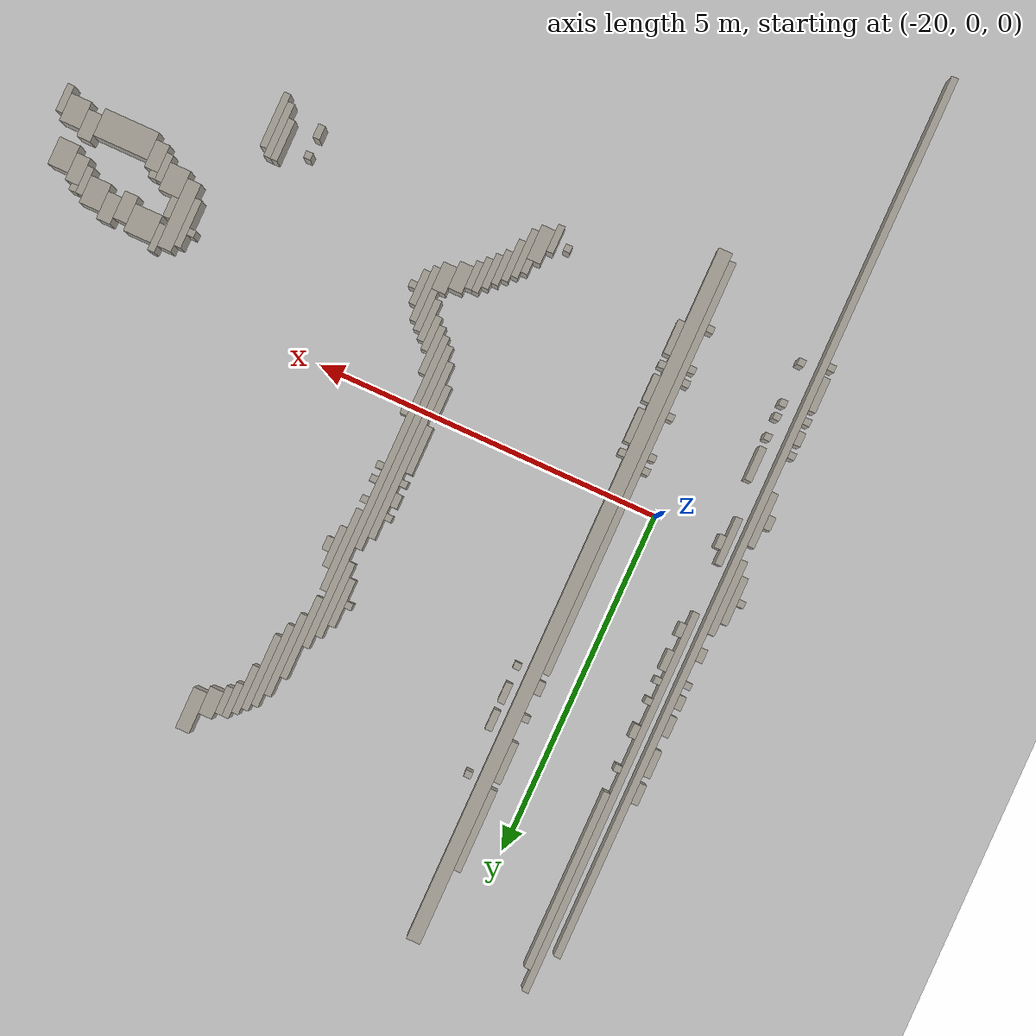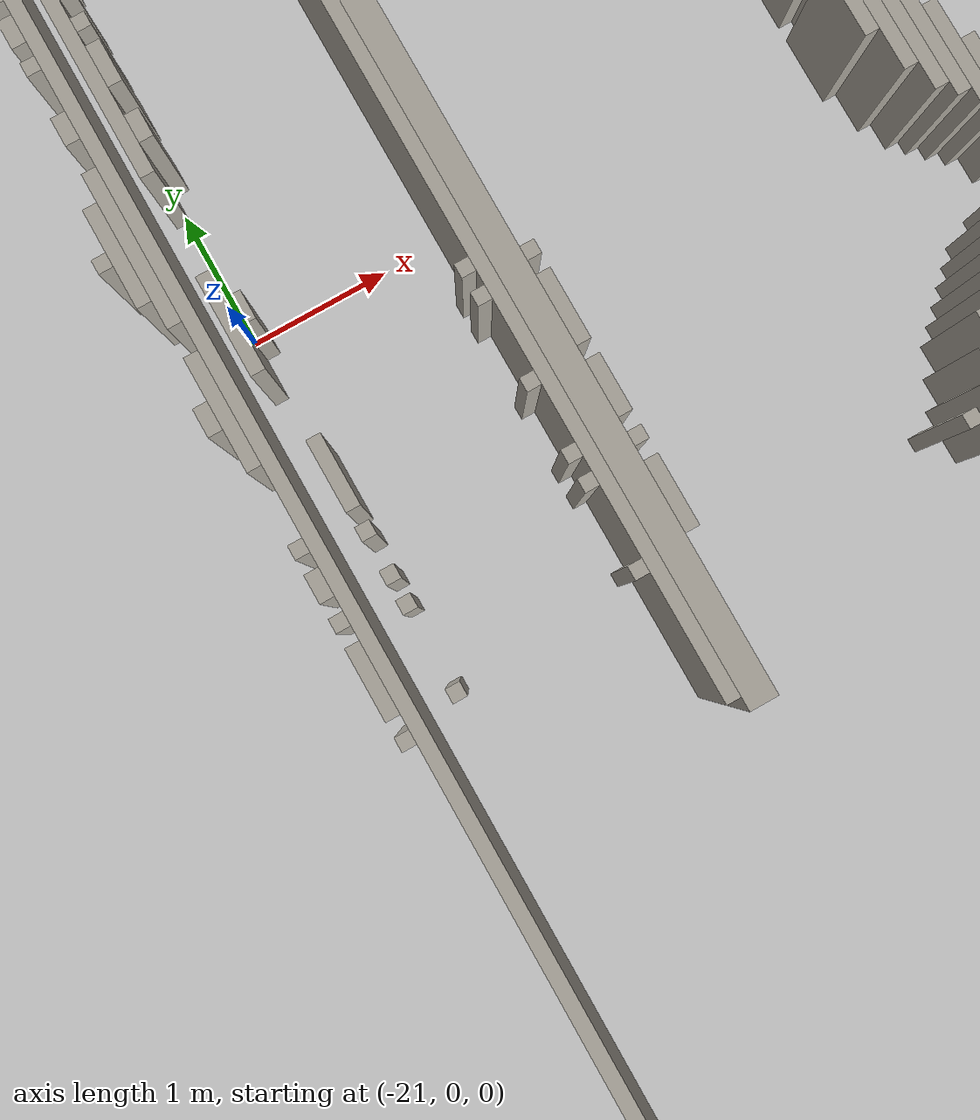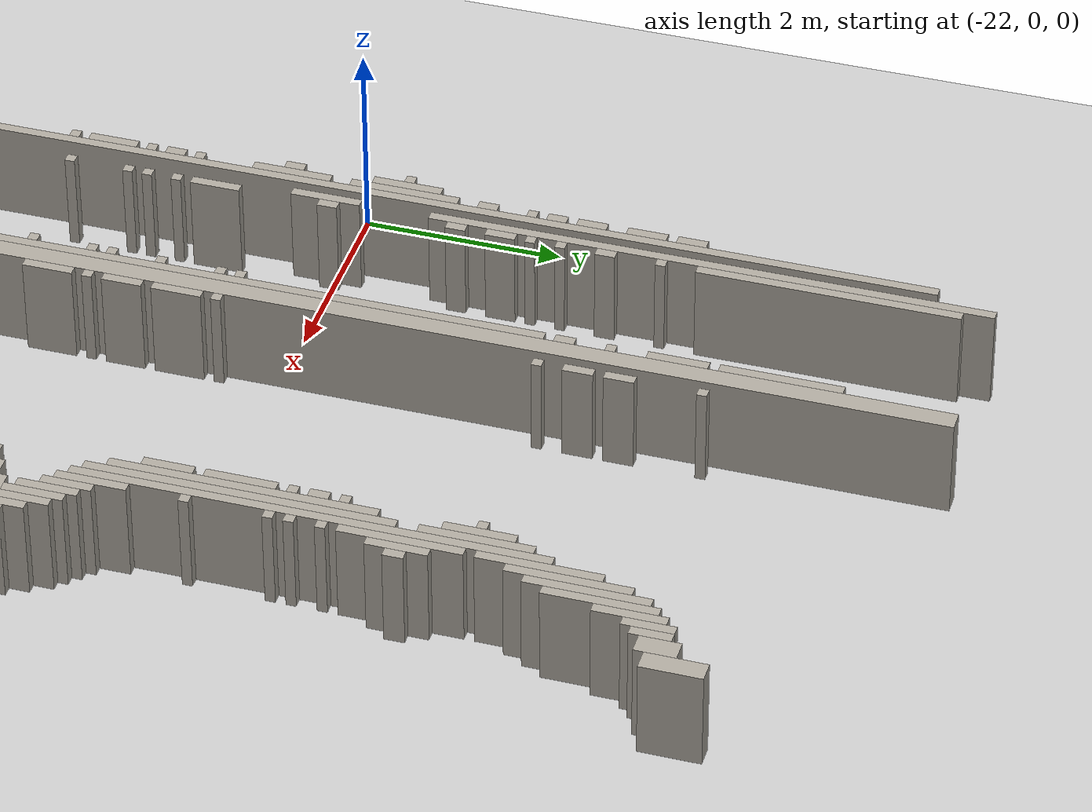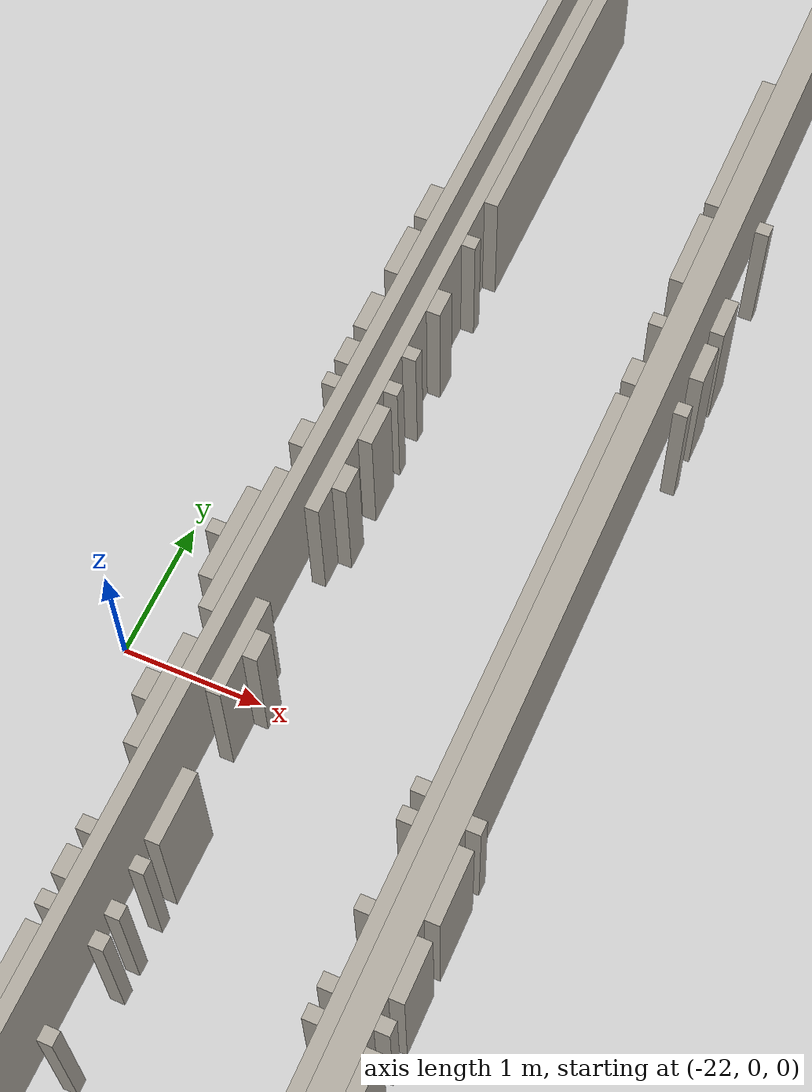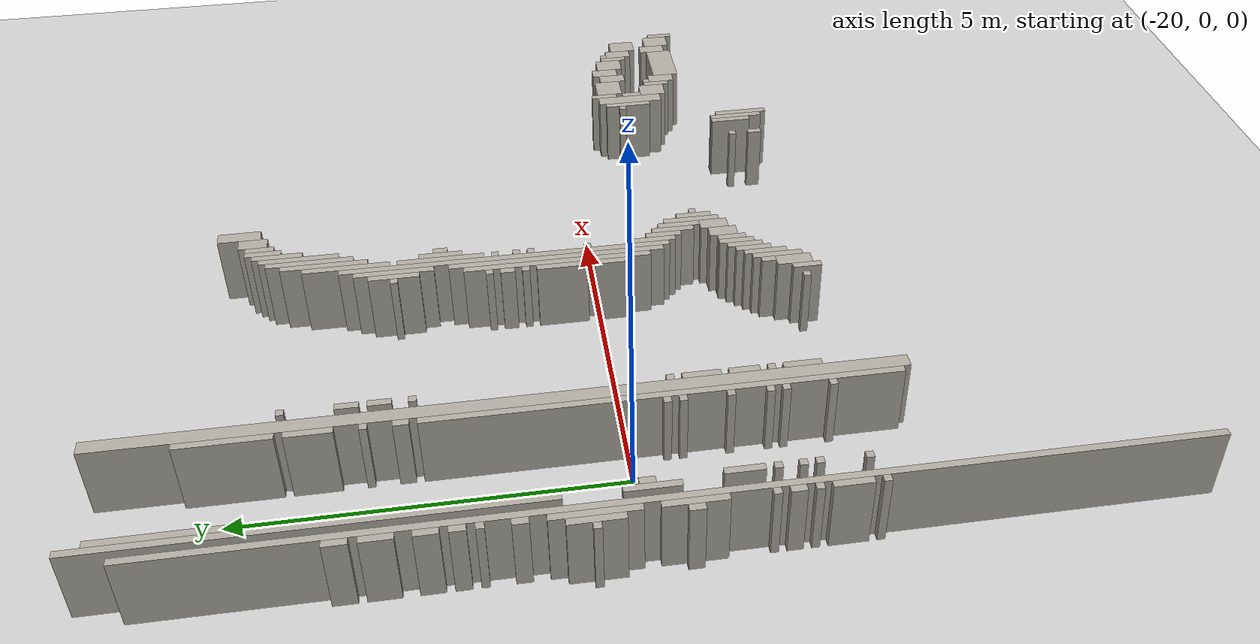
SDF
<sdf version="1.6">
 <world name="willow_office">
  <include><uri>model://sun</uri></include>
  <include><uri>model://ground_plane</uri></include>
  <model name="willow_office_walls">
   <static>true</static>
   <link name="w0046">
    <pose>-21.235 -0.538 0.500 0 0 0</pose>
    <collision name="c"><geometry><box><size>0.100 13.000 1.000</size></box></geometry></collision>
    <visual name="v">
     <geometry><box><size>0.100 13.000 1.000</size></box></geometry>
     <material><ambient>0.68 0.66 0.62 1</ambient><diffuse>0.68 0.66 0.62 1</diffuse></material>
    </visual>
   </link>
   <link name="w0279">
    <pose>-19.385 1.462 0.500 0 0 0</pose>
    <collision name="c"><geometry><box><size>0.200 10.200 1.000</size></box></geometry></collision>
    <visual name="v">
     <geometry><box><size>0.200 10.200 1.000</size></box></geometry>
     <material><ambient>0.68 0.66 0.62 1</ambient><diffuse>0.68 0.66 0.62 1</diffuse></material>
    </visual>
   </link>
   <link name="w0291">
    <pose>-19.535 -0.488 0.500 0 0 0</pose>
    <collision name="c"><geometry><box><size>0.100 6.100 1.000</size></box></geometry></collision>
    <visual name="v">
     <geometry><box><size>0.100 6.100 1.000</size></box></geometry>
     <material><ambient>0.68 0.66 0.62 1</ambient><diffuse>0.68 0.66 0.62 1</diffuse></material>
    </visual>
   </link>
   <link name="w0327">
    <pose>-13.135 -2.738 0.500 0 0 0</pose>
    <collision name="c"><geometry><box><size>0.100 0.800 1.000</size></box></geometry></collision>
    <visual name="v">
     <geometry><box><size>0.100 0.800 1.000</size></box></geometry>
     <material><ambient>0.68 0.66 0.62 1</ambient><diffuse>0.68 0.66 0.62 1</diffuse></material>
    </visual>
   </link>
   <link name="w0329">
    <pose>-17.235 -2.838 0.500 0 0 0</pose>
    <collision name="c"><geometry><box><size>0.100 0.400 1.000</size></box></geometry></collision>
    <visual name="v">
     <geometry><box><size>0.100 0.400 1.000</size></box></geometry>
     <material><ambient>0.68 0.66 0.62 1</ambient><diffuse>0.68 0.66 0.62 1</diffuse></material>
    </visual>
   </link>
   <link name="w0330">
    <pose>-13.235 -2.638 0.500 0 0 0</pose>
    <collision name="c"><geometry><box><size>0.100 0.800 1.000</size></box></geometry></collision>
    <visual name="v">
     <geometry><box><size>0.100 0.800 1.000</size></box></geometry>
     <material><ambient>0.68 0.66 0.62 1</ambient><diffuse>0.68 0.66 0.62 1</diffuse></material>
    </visual>
   </link>
   <link name="w0341">
    <pose>-17.085 -2.688 0.500 0 0 0</pose>
    <collision name="c"><geometry><box><size>0.200 0.500 1.000</size></box></geometry></collision>
    <visual name="v">
     <geometry><box><size>0.200 0.500 1.000</size></box></geometry>
     <material><ambient>0.68 0.66 0.62 1</ambient><diffuse>0.68 0.66 0.62 1</diffuse></material>
    </visual>
   </link>
   <link name="w0342">
    <pose>-13.735 -2.838 0.500 0 0 0</pose>
    <collision name="c"><geometry><box><size>0.100 0.200 1.000</size></box></geometry></collision>
    <visual name="v">
     <geometry><box><size>0.100 0.200 1.000</size></box></geometry>
     <material><ambient>0.68 0.66 0.62 1</ambient><diffuse>0.68 0.66 0.62 1</diffuse></material>
    </visual>
   </link>
   <link name="w0346">
    <pose>-21.335 -2.788 0.500 0 0 0</pose>
    <collision name="c"><geometry><box><size>0.100 0.100 1.000</size></box></geometry></collision>
    <visual name="v">
     <geometry><box><size>0.100 0.100 1.000</size></box></geometry>
     <material><ambient>0.68 0.66 0.62 1</ambient><diffuse>0.68 0.66 0.62 1</diffuse></material>
    </visual>
   </link>
   <link name="w0347">
    <pose>-17.435 -2.788 0.500 0 0 0</pose>
    <collision name="c"><geometry><box><size>0.100 0.100 1.000</size></box></geometry></collision>
    <visual name="v">
     <geometry><box><size>0.100 0.100 1.000</size></box></geometry>
     <material><ambient>0.68 0.66 0.62 1</ambient><diffuse>0.68 0.66 0.62 1</diffuse></material>
    </visual>
   </link>
   <link name="w0348">
    <pose>-16.935 -2.488 0.500 0 0 0</pose>
    <collision name="c"><geometry><box><size>0.100 0.700 1.000</size></box></geometry></collision>
    <visual name="v">
     <geometry><box><size>0.100 0.700 1.000</size></box></geometry>
     <material><ambient>0.68 0.66 0.62 1</ambient><diffuse>0.68 0.66 0.62 1</diffuse></material>
    </visual>
   </link>
   <link name="w0349">
    <pose>-13.335 -2.538 0.500 0 0 0</pose>
    <collision name="c"><geometry><box><size>0.100 0.600 1.000</size></box></geometry></collision>
    <visual name="v">
     <geometry><box><size>0.100 0.600 1.000</size></box></geometry>
     <material><ambient>0.68 0.66 0.62 1</ambient><diffuse>0.68 0.66 0.62 1</diffuse></material>
    </visual>
   </link>
   <link name="w0356">
    <pose>-20.935 -2.688 0.500 0 0 0</pose>
    <collision name="c"><geometry><box><size>0.100 0.100 1.000</size></box></geometry></collision>
    <visual name="v">
     <geometry><box><size>0.100 0.100 1.000</size></box></geometry>
     <material><ambient>0.68 0.66 0.62 1</ambient><diffuse>0.68 0.66 0.62 1</diffuse></material>
    </visual>
   </link>
   <link name="w0360">
    <pose>-21.335 -2.388 0.500 0 0 0</pose>
    <collision name="c"><geometry><box><size>0.100 0.500 1.000</size></box></geometry></collision>
    <visual name="v">
     <geometry><box><size>0.100 0.500 1.000</size></box></geometry>
     <material><ambient>0.68 0.66 0.62 1</ambient><diffuse>0.68 0.66 0.62 1</diffuse></material>
    </visual>
   </link>
   <link name="w0361">
    <pose>-19.635 -2.588 0.500 0 0 0</pose>
    <collision name="c"><geometry><box><size>0.100 0.100 1.000</size></box></geometry></collision>
    <visual name="v">
     <geometry><box><size>0.100 0.100 1.000</size></box></geometry>
     <material><ambient>0.68 0.66 0.62 1</ambient><diffuse>0.68 0.66 0.62 1</diffuse></material>
    </visual>
   </link>
   <link name="w0362">
    <pose>-16.835 -2.338 0.500 0 0 0</pose>
    <collision name="c"><geometry><box><size>0.100 0.600 1.000</size></box></geometry></collision>
    <visual name="v">
     <geometry><box><size>0.100 0.600 1.000</size></box></geometry>
     <material><ambient>0.68 0.66 0.62 1</ambient><diffuse>0.68 0.66 0.62 1</diffuse></material>
    </visual>
   </link>
   <link name="w0366">
    <pose>-19.235 -2.288 0.500 0 0 0</pose>
    <collision name="c"><geometry><box><size>0.100 0.500 1.000</size></box></geometry></collision>
    <visual name="v">
     <geometry><box><size>0.100 0.500 1.000</size></box></geometry>
     <material><ambient>0.68 0.66 0.62 1</ambient><diffuse>0.68 0.66 0.62 1</diffuse></material>
    </visual>
   </link>
   <link name="w0367">
    <pose>-13.735 -2.488 0.500 0 0 0</pose>
    <collision name="c"><geometry><box><size>0.100 0.100 1.000</size></box></geometry></collision>
    <visual name="v">
     <geometry><box><size>0.100 0.100 1.000</size></box></geometry>
     <material><ambient>0.68 0.66 0.62 1</ambient><diffuse>0.68 0.66 0.62 1</diffuse></material>
    </visual>
   </link>
   <link name="w0372">
    <pose>-17.035 -2.338 0.500 0 0 0</pose>
    <collision name="c"><geometry><box><size>0.100 0.200 1.000</size></box></geometry></collision>
    <visual name="v">
     <geometry><box><size>0.100 0.200 1.000</size></box></geometry>
     <material><ambient>0.68 0.66 0.62 1</ambient><diffuse>0.68 0.66 0.62 1</diffuse></material>
    </visual>
   </link>
   <link name="w0373">
    <pose>-16.735 -2.188 0.500 0 0 0</pose>
    <collision name="c"><geometry><box><size>0.100 0.500 1.000</size></box></geometry></collision>
    <visual name="v">
     <geometry><box><size>0.100 0.500 1.000</size></box></geometry>
     <material><ambient>0.68 0.66 0.62 1</ambient><diffuse>0.68 0.66 0.62 1</diffuse></material>
    </visual>
   </link>
   <link name="w0377">
    <pose>-16.635 -2.088 0.500 0 0 0</pose>
    <collision name="c"><geometry><box><size>0.100 0.500 1.000</size></box></geometry></collision>
    <visual name="v">
     <geometry><box><size>0.100 0.500 1.000</size></box></geometry>
     <material><ambient>0.68 0.66 0.62 1</ambient><diffuse>0.68 0.66 0.62 1</diffuse></material>
    </visual>
   </link>
   <link name="w0379">
    <pose>-16.535 -1.988 0.500 0 0 0</pose>
    <collision name="c"><geometry><box><size>0.100 0.500 1.000</size></box></geometry></collision>
    <visual name="v">
     <geometry><box><size>0.100 0.500 1.000</size></box></geometry>
     <material><ambient>0.68 0.66 0.62 1</ambient><diffuse>0.68 0.66 0.62 1</diffuse></material>
    </visual>
   </link>
   <link name="w0383">
    <pose>-20.935 -2.088 0.500 0 0 0</pose>
    <collision name="c"><geometry><box><size>0.100 0.100 1.000</size></box></geometry></collision>
    <visual name="v">
     <geometry><box><size>0.100 0.100 1.000</size></box></geometry>
     <material><ambient>0.68 0.66 0.62 1</ambient><diffuse>0.68 0.66 0.62 1</diffuse></material>
    </visual>
   </link>
   <link name="w0384">
    <pose>-16.435 -1.938 0.500 0 0 0</pose>
    <collision name="c"><geometry><box><size>0.100 0.400 1.000</size></box></geometry></collision>
    <visual name="v">
     <geometry><box><size>0.100 0.400 1.000</size></box></geometry>
     <material><ambient>0.68 0.66 0.62 1</ambient><diffuse>0.68 0.66 0.62 1</diffuse></material>
    </visual>
   </link>
   <link name="w0388">
    <pose>-21.335 -1.988 0.500 0 0 0</pose>
    <collision name="c"><geometry><box><size>0.100 0.100 1.000</size></box></geometry></collision>
    <visual name="v">
     <geometry><box><size>0.100 0.100 1.000</size></box></geometry>
     <material><ambient>0.68 0.66 0.62 1</ambient><diffuse>0.68 0.66 0.62 1</diffuse></material>
    </visual>
   </link>
   <link name="w0389">
    <pose>-19.635 -1.988 0.500 0 0 0</pose>
    <collision name="c"><geometry><box><size>0.100 0.100 1.000</size></box></geometry></collision>
    <visual name="v">
     <geometry><box><size>0.100 0.100 1.000</size></box></geometry>
     <material><ambient>0.68 0.66 0.62 1</ambient><diffuse>0.68 0.66 0.62 1</diffuse></material>
    </visual>
   </link>
   <link name="w0390">
    <pose>-16.285 -1.838 0.500 0 0 0</pose>
    <collision name="c"><geometry><box><size>0.200 0.400 1.000</size></box></geometry></collision>
    <visual name="v">
     <geometry><box><size>0.200 0.400 1.000</size></box></geometry>
     <material><ambient>0.68 0.66 0.62 1</ambient><diffuse>0.68 0.66 0.62 1</diffuse></material>
    </visual>
   </link>
   <link name="w0391">
    <pose>-10.435 -1.838 0.500 0 0 0</pose>
    <collision name="c"><geometry><box><size>0.100 0.400 1.000</size></box></geometry></collision>
    <visual name="v">
     <geometry><box><size>0.100 0.400 1.000</size></box></geometry>
     <material><ambient>0.68 0.66 0.62 1</ambient><diffuse>0.68 0.66 0.62 1</diffuse></material>
    </visual>
   </link>
   <link name="w0395">
    <pose>-20.935 -1.888 0.500 0 0 0</pose>
    <collision name="c"><geometry><box><size>0.100 0.100 1.000</size></box></geometry></collision>
    <visual name="v">
     <geometry><box><size>0.100 0.100 1.000</size></box></geometry>
     <material><ambient>0.68 0.66 0.62 1</ambient><diffuse>0.68 0.66 0.62 1</diffuse></material>
    </visual>
   </link>
   <link name="w0396">
    <pose>-19.235 -1.888 0.500 0 0 0</pose>
    <collision name="c"><geometry><box><size>0.100 0.100 1.000</size></box></geometry></collision>
    <visual name="v">
     <geometry><box><size>0.100 0.100 1.000</size></box></geometry>
     <material><ambient>0.68 0.66 0.62 1</ambient><diffuse>0.68 0.66 0.62 1</diffuse></material>
    </visual>
   </link>
   <link name="w0397">
    <pose>-16.085 -1.738 0.500 0 0 0</pose>
    <collision name="c"><geometry><box><size>0.200 0.400 1.000</size></box></geometry></collision>
    <visual name="v">
     <geometry><box><size>0.200 0.400 1.000</size></box></geometry>
     <material><ambient>0.68 0.66 0.62 1</ambient><diffuse>0.68 0.66 0.62 1</diffuse></material>
    </visual>
   </link>
   <link name="w0398">
    <pose>-11.385 -1.738 0.500 0 0 0</pose>
    <collision name="c"><geometry><box><size>0.800 0.400 1.000</size></box></geometry></collision>
    <visual name="v">
     <geometry><box><size>0.800 0.400 1.000</size></box></geometry>
     <material><ambient>0.68 0.66 0.62 1</ambient><diffuse>0.68 0.66 0.62 1</diffuse></material>
    </visual>
   </link>
   <link name="w0399">
    <pose>-10.635 -1.738 0.500 0 0 0</pose>
    <collision name="c"><geometry><box><size>0.300 0.400 1.000</size></box></geometry></collision>
    <visual name="v">
     <geometry><box><size>0.300 0.400 1.000</size></box></geometry>
     <material><ambient>0.68 0.66 0.62 1</ambient><diffuse>0.68 0.66 0.62 1</diffuse></material>
    </visual>
   </link>
   <link name="w0403">
    <pose>-21.335 -1.738 0.500 0 0 0</pose>
    <collision name="c"><geometry><box><size>0.100 0.200 1.000</size></box></geometry></collision>
    <visual name="v">
     <geometry><box><size>0.100 0.200 1.000</size></box></geometry>
     <material><ambient>0.68 0.66 0.62 1</ambient><diffuse>0.68 0.66 0.62 1</diffuse></material>
    </visual>
   </link>
   <link name="w0404">
    <pose>-19.635 -1.788 0.500 0 0 0</pose>
    <collision name="c"><geometry><box><size>0.100 0.100 1.000</size></box></geometry></collision>
    <visual name="v">
     <geometry><box><size>0.100 0.100 1.000</size></box></geometry>
     <material><ambient>0.68 0.66 0.62 1</ambient><diffuse>0.68 0.66 0.62 1</diffuse></material>
    </visual>
   </link>
   <link name="w0405">
    <pose>-15.935 -1.438 0.500 0 0 0</pose>
    <collision name="c"><geometry><box><size>0.100 0.800 1.000</size></box></geometry></collision>
    <visual name="v">
     <geometry><box><size>0.100 0.800 1.000</size></box></geometry>
     <material><ambient>0.68 0.66 0.62 1</ambient><diffuse>0.68 0.66 0.62 1</diffuse></material>
    </visual>
   </link>
   <link name="w0406">
    <pose>-11.885 -1.638 0.500 0 0 0</pose>
    <collision name="c"><geometry><box><size>0.200 0.400 1.000</size></box></geometry></collision>
    <visual name="v">
     <geometry><box><size>0.200 0.400 1.000</size></box></geometry>
     <material><ambient>0.68 0.66 0.62 1</ambient><diffuse>0.68 0.66 0.62 1</diffuse></material>
    </visual>
   </link>
   <link name="w0407">
    <pose>-10.885 -1.638 0.500 0 0 0</pose>
    <collision name="c"><geometry><box><size>0.200 0.400 1.000</size></box></geometry></collision>
    <visual name="v">
     <geometry><box><size>0.200 0.400 1.000</size></box></geometry>
     <material><ambient>0.68 0.66 0.62 1</ambient><diffuse>0.68 0.66 0.62 1</diffuse></material>
    </visual>
   </link>
   <link name="w0413">
    <pose>-19.235 -1.538 0.500 0 0 0</pose>
    <collision name="c"><geometry><box><size>0.100 0.400 1.000</size></box></geometry></collision>
    <visual name="v">
     <geometry><box><size>0.100 0.400 1.000</size></box></geometry>
     <material><ambient>0.68 0.66 0.62 1</ambient><diffuse>0.68 0.66 0.62 1</diffuse></material>
    </visual>
   </link>
   <link name="w0414">
    <pose>-15.835 -1.488 0.500 0 0 0</pose>
    <collision name="c"><geometry><box><size>0.100 0.500 1.000</size></box></geometry></collision>
    <visual name="v">
     <geometry><box><size>0.100 0.500 1.000</size></box></geometry>
     <material><ambient>0.68 0.66 0.62 1</ambient><diffuse>0.68 0.66 0.62 1</diffuse></material>
    </visual>
   </link>
   <link name="w0415">
    <pose>-12.035 -1.538 0.500 0 0 0</pose>
    <collision name="c"><geometry><box><size>0.100 0.400 1.000</size></box></geometry></collision>
    <visual name="v">
     <geometry><box><size>0.100 0.400 1.000</size></box></geometry>
     <material><ambient>0.68 0.66 0.62 1</ambient><diffuse>0.68 0.66 0.62 1</diffuse></material>
    </visual>
   </link>
   <link name="w0423">
    <pose>-20.935 -1.588 0.500 0 0 0</pose>
    <collision name="c"><geometry><box><size>0.100 0.100 1.000</size></box></geometry></collision>
    <visual name="v">
     <geometry><box><size>0.100 0.100 1.000</size></box></geometry>
     <material><ambient>0.68 0.66 0.62 1</ambient><diffuse>0.68 0.66 0.62 1</diffuse></material>
    </visual>
   </link>
   <link name="w0424">
    <pose>-12.235 -1.438 0.500 0 0 0</pose>
    <collision name="c"><geometry><box><size>0.300 0.400 1.000</size></box></geometry></collision>
    <visual name="v">
     <geometry><box><size>0.300 0.400 1.000</size></box></geometry>
     <material><ambient>0.68 0.66 0.62 1</ambient><diffuse>0.68 0.66 0.62 1</diffuse></material>
    </visual>
   </link>
   <link name="w0435">
    <pose>-21.335 -1.488 0.500 0 0 0</pose>
    <collision name="c"><geometry><box><size>0.100 0.100 1.000</size></box></geometry></collision>
    <visual name="v">
     <geometry><box><size>0.100 0.100 1.000</size></box></geometry>
     <material><ambient>0.68 0.66 0.62 1</ambient><diffuse>0.68 0.66 0.62 1</diffuse></material>
    </visual>
   </link>
   <link name="w0436">
    <pose>-16.035 -1.238 0.500 0 0 0</pose>
    <collision name="c"><geometry><box><size>0.100 0.600 1.000</size></box></geometry></collision>
    <visual name="v">
     <geometry><box><size>0.100 0.600 1.000</size></box></geometry>
     <material><ambient>0.68 0.66 0.62 1</ambient><diffuse>0.68 0.66 0.62 1</diffuse></material>
    </visual>
   </link>
   <link name="w0437">
    <pose>-15.735 -1.488 0.500 0 0 0</pose>
    <collision name="c"><geometry><box><size>0.100 0.100 1.000</size></box></geometry></collision>
    <visual name="v">
     <geometry><box><size>0.100 0.100 1.000</size></box></geometry>
     <material><ambient>0.68 0.66 0.62 1</ambient><diffuse>0.68 0.66 0.62 1</diffuse></material>
    </visual>
   </link>
   <link name="w0438">
    <pose>-12.485 -1.038 0.500 0 0 0</pose>
    <collision name="c"><geometry><box><size>0.200 1.000 1.000</size></box></geometry></collision>
    <visual name="v">
     <geometry><box><size>0.200 1.000 1.000</size></box></geometry>
     <material><ambient>0.68 0.66 0.62 1</ambient><diffuse>0.68 0.66 0.62 1</diffuse></material>
    </visual>
   </link>
   <link name="w0447">
    <pose>-20.935 -1.188 0.500 0 0 0</pose>
    <collision name="c"><geometry><box><size>0.100 0.500 1.000</size></box></geometry></collision>
    <visual name="v">
     <geometry><box><size>0.100 0.500 1.000</size></box></geometry>
     <material><ambient>0.68 0.66 0.62 1</ambient><diffuse>0.68 0.66 0.62 1</diffuse></material>
    </visual>
   </link>
   <link name="w0448">
    <pose>-16.135 -1.138 0.500 0 0 0</pose>
    <collision name="c"><geometry><box><size>0.100 0.600 1.000</size></box></geometry></collision>
    <visual name="v">
     <geometry><box><size>0.100 0.600 1.000</size></box></geometry>
     <material><ambient>0.68 0.66 0.62 1</ambient><diffuse>0.68 0.66 0.62 1</diffuse></material>
    </visual>
   </link>
   <link name="w0449">
    <pose>-11.935 -1.388 0.500 0 0 0</pose>
    <collision name="c"><geometry><box><size>0.100 0.100 1.000</size></box></geometry></collision>
    <visual name="v">
     <geometry><box><size>0.100 0.100 1.000</size></box></geometry>
     <material><ambient>0.68 0.66 0.62 1</ambient><diffuse>0.68 0.66 0.62 1</diffuse></material>
    </visual>
   </link>
   <link name="w0454">
    <pose>-19.635 -1.288 0.500 0 0 0</pose>
    <collision name="c"><geometry><box><size>0.100 0.100 1.000</size></box></geometry></collision>
    <visual name="v">
     <geometry><box><size>0.100 0.100 1.000</size></box></geometry>
     <material><ambient>0.68 0.66 0.62 1</ambient><diffuse>0.68 0.66 0.62 1</diffuse></material>
    </visual>
   </link>
   <link name="w0455">
    <pose>-12.635 -0.988 0.500 0 0 0</pose>
    <collision name="c"><geometry><box><size>0.100 0.700 1.000</size></box></geometry></collision>
    <visual name="v">
     <geometry><box><size>0.100 0.700 1.000</size></box></geometry>
     <material><ambient>0.68 0.66 0.62 1</ambient><diffuse>0.68 0.66 0.62 1</diffuse></material>
    </visual>
   </link>
   <link name="w0456">
    <pose>-10.735 -1.138 0.500 0 0 0</pose>
    <collision name="c"><geometry><box><size>0.300 0.400 1.000</size></box></geometry></collision>
    <visual name="v">
     <geometry><box><size>0.300 0.400 1.000</size></box></geometry>
     <material><ambient>0.68 0.66 0.62 1</ambient><diffuse>0.68 0.66 0.62 1</diffuse></material>
    </visual>
   </link>
   <link name="w0460">
    <pose>-19.235 -0.988 0.500 0 0 0</pose>
    <collision name="c"><geometry><box><size>0.100 0.500 1.000</size></box></geometry></collision>
    <visual name="v">
     <geometry><box><size>0.100 0.500 1.000</size></box></geometry>
     <material><ambient>0.68 0.66 0.62 1</ambient><diffuse>0.68 0.66 0.62 1</diffuse></material>
    </visual>
   </link>
   <link name="w0461">
    <pose>-16.235 -0.988 0.500 0 0 0</pose>
    <collision name="c"><geometry><box><size>0.100 0.500 1.000</size></box></geometry></collision>
    <visual name="v">
     <geometry><box><size>0.100 0.500 1.000</size></box></geometry>
     <material><ambient>0.68 0.66 0.62 1</ambient><diffuse>0.68 0.66 0.62 1</diffuse></material>
    </visual>
   </link>
   <link name="w0462">
    <pose>-12.335 -1.088 0.500 0 0 0</pose>
    <collision name="c"><geometry><box><size>0.100 0.300 1.000</size></box></geometry></collision>
    <visual name="v">
     <geometry><box><size>0.100 0.300 1.000</size></box></geometry>
     <material><ambient>0.68 0.66 0.62 1</ambient><diffuse>0.68 0.66 0.62 1</diffuse></material>
    </visual>
   </link>
   <link name="w0463">
    <pose>-10.985 -1.038 0.500 0 0 0</pose>
    <collision name="c"><geometry><box><size>0.200 0.400 1.000</size></box></geometry></collision>
    <visual name="v">
     <geometry><box><size>0.200 0.400 1.000</size></box></geometry>
     <material><ambient>0.68 0.66 0.62 1</ambient><diffuse>0.68 0.66 0.62 1</diffuse></material>
    </visual>
   </link>
   <link name="w0467">
    <pose>-16.335 -0.788 0.500 0 0 0</pose>
    <collision name="c"><geometry><box><size>0.100 0.700 1.000</size></box></geometry></collision>
    <visual name="v">
     <geometry><box><size>0.100 0.700 1.000</size></box></geometry>
     <material><ambient>0.68 0.66 0.62 1</ambient><diffuse>0.68 0.66 0.62 1</diffuse></material>
    </visual>
   </link>
   <link name="w0468">
    <pose>-11.135 -0.938 0.500 0 0 0</pose>
    <collision name="c"><geometry><box><size>0.100 0.400 1.000</size></box></geometry></collision>
    <visual name="v">
     <geometry><box><size>0.100 0.400 1.000</size></box></geometry>
     <material><ambient>0.68 0.66 0.62 1</ambient><diffuse>0.68 0.66 0.62 1</diffuse></material>
    </visual>
   </link>
   <link name="w0470">
    <pose>-16.435 1.262 0.500 0 0 0</pose>
    <collision name="c"><geometry><box><size>0.100 4.600 1.000</size></box></geometry></collision>
    <visual name="v">
     <geometry><box><size>0.100 4.600 1.000</size></box></geometry>
     <material><ambient>0.68 0.66 0.62 1</ambient><diffuse>0.68 0.66 0.62 1</diffuse></material>
    </visual>
   </link>
   <link name="w0471">
    <pose>-11.785 -0.838 0.500 0 0 0</pose>
    <collision name="c"><geometry><box><size>0.200 0.400 1.000</size></box></geometry></collision>
    <visual name="v">
     <geometry><box><size>0.200 0.400 1.000</size></box></geometry>
     <material><ambient>0.68 0.66 0.62 1</ambient><diffuse>0.68 0.66 0.62 1</diffuse></material>
    </visual>
   </link>
   <link name="w0472">
    <pose>-11.335 -0.838 0.500 0 0 0</pose>
    <collision name="c"><geometry><box><size>0.300 0.400 1.000</size></box></geometry></collision>
    <visual name="v">
     <geometry><box><size>0.300 0.400 1.000</size></box></geometry>
     <material><ambient>0.68 0.66 0.62 1</ambient><diffuse>0.68 0.66 0.62 1</diffuse></material>
    </visual>
   </link>
   <link name="w0474">
    <pose>-21.335 -0.538 0.500 0 0 0</pose>
    <collision name="c"><geometry><box><size>0.100 0.800 1.000</size></box></geometry></collision>
    <visual name="v">
     <geometry><box><size>0.100 0.800 1.000</size></box></geometry>
     <material><ambient>0.68 0.66 0.62 1</ambient><diffuse>0.68 0.66 0.62 1</diffuse></material>
    </visual>
   </link>
   <link name="w0475">
    <pose>-16.535 0.562 0.500 0 0 0</pose>
    <collision name="c"><geometry><box><size>0.100 3.000 1.000</size></box></geometry></collision>
    <visual name="v">
     <geometry><box><size>0.100 3.000 1.000</size></box></geometry>
     <material><ambient>0.68 0.66 0.62 1</ambient><diffuse>0.68 0.66 0.62 1</diffuse></material>
    </visual>
   </link>
   <link name="w0476">
    <pose>-12.735 -0.888 0.500 0 0 0</pose>
    <collision name="c"><geometry><box><size>0.100 0.100 1.000</size></box></geometry></collision>
    <visual name="v">
     <geometry><box><size>0.100 0.100 1.000</size></box></geometry>
     <material><ambient>0.68 0.66 0.62 1</ambient><diffuse>0.68 0.66 0.62 1</diffuse></material>
    </visual>
   </link>
   <link name="w0477">
    <pose>-12.085 -0.738 0.500 0 0 0</pose>
    <collision name="c"><geometry><box><size>0.400 0.400 1.000</size></box></geometry></collision>
    <visual name="v">
     <geometry><box><size>0.400 0.400 1.000</size></box></geometry>
     <material><ambient>0.68 0.66 0.62 1</ambient><diffuse>0.68 0.66 0.62 1</diffuse></material>
    </visual>
   </link>
   <link name="w0478">
    <pose>-11.585 -0.738 0.500 0 0 0</pose>
    <collision name="c"><geometry><box><size>0.200 0.400 1.000</size></box></geometry></collision>
    <visual name="v">
     <geometry><box><size>0.200 0.400 1.000</size></box></geometry>
     <material><ambient>0.68 0.66 0.62 1</ambient><diffuse>0.68 0.66 0.62 1</diffuse></material>
    </visual>
   </link>
   <link name="w0479">
    <pose>-12.335 -0.638 0.500 0 0 0</pose>
    <collision name="c"><geometry><box><size>0.100 0.400 1.000</size></box></geometry></collision>
    <visual name="v">
     <geometry><box><size>0.100 0.400 1.000</size></box></geometry>
     <material><ambient>0.68 0.66 0.62 1</ambient><diffuse>0.68 0.66 0.62 1</diffuse></material>
    </visual>
   </link>
   <link name="w0480">
    <pose>-11.035 -0.788 0.500 0 0 0</pose>
    <collision name="c"><geometry><box><size>0.100 0.100 1.000</size></box></geometry></collision>
    <visual name="v">
     <geometry><box><size>0.100 0.100 1.000</size></box></geometry>
     <material><ambient>0.68 0.66 0.62 1</ambient><diffuse>0.68 0.66 0.62 1</diffuse></material>
    </visual>
   </link>
   <link name="w0482">
    <pose>-19.635 -0.688 0.500 0 0 0</pose>
    <collision name="c"><geometry><box><size>0.100 0.100 1.000</size></box></geometry></collision>
    <visual name="v">
     <geometry><box><size>0.100 0.100 1.000</size></box></geometry>
     <material><ambient>0.68 0.66 0.62 1</ambient><diffuse>0.68 0.66 0.62 1</diffuse></material>
    </visual>
   </link>
   <link name="w0483">
    <pose>-16.635 0.562 0.500 0 0 0</pose>
    <collision name="c"><geometry><box><size>0.100 2.600 1.000</size></box></geometry></collision>
    <visual name="v">
     <geometry><box><size>0.100 2.600 1.000</size></box></geometry>
     <material><ambient>0.68 0.66 0.62 1</ambient><diffuse>0.68 0.66 0.62 1</diffuse></material>
    </visual>
   </link>
   <link name="w0487">
    <pose>-21.435 -0.538 0.500 0 0 0</pose>
    <collision name="c"><geometry><box><size>0.100 0.200 1.000</size></box></geometry></collision>
    <visual name="v">
     <geometry><box><size>0.100 0.200 1.000</size></box></geometry>
     <material><ambient>0.68 0.66 0.62 1</ambient><diffuse>0.68 0.66 0.62 1</diffuse></material>
    </visual>
   </link>
   <link name="w0488">
    <pose>-19.235 -0.588 0.500 0 0 0</pose>
    <collision name="c"><geometry><box><size>0.100 0.100 1.000</size></box></geometry></collision>
    <visual name="v">
     <geometry><box><size>0.100 0.100 1.000</size></box></geometry>
     <material><ambient>0.68 0.66 0.62 1</ambient><diffuse>0.68 0.66 0.62 1</diffuse></material>
    </visual>
   </link>
   <link name="w0490">
    <pose>-19.635 -0.488 0.500 0 0 0</pose>
    <collision name="c"><geometry><box><size>0.100 0.100 1.000</size></box></geometry></collision>
    <visual name="v">
     <geometry><box><size>0.100 0.100 1.000</size></box></geometry>
     <material><ambient>0.68 0.66 0.62 1</ambient><diffuse>0.68 0.66 0.62 1</diffuse></material>
    </visual>
   </link>
   <link name="w0491">
    <pose>-21.035 -0.088 0.500 0 0 0</pose>
    <collision name="c"><geometry><box><size>0.100 0.700 1.000</size></box></geometry></collision>
    <visual name="v">
     <geometry><box><size>0.100 0.700 1.000</size></box></geometry>
     <material><ambient>0.68 0.66 0.62 1</ambient><diffuse>0.68 0.66 0.62 1</diffuse></material>
    </visual>
   </link>
   <link name="w0493">
    <pose>-16.735 -0.188 0.500 0 0 0</pose>
    <collision name="c"><geometry><box><size>0.100 0.500 1.000</size></box></geometry></collision>
    <visual name="v">
     <geometry><box><size>0.100 0.500 1.000</size></box></geometry>
     <material><ambient>0.68 0.66 0.62 1</ambient><diffuse>0.68 0.66 0.62 1</diffuse></material>
    </visual>
   </link>
   <link name="w0499">
    <pose>-20.935 -0.038 0.500 0 0 0</pose>
    <collision name="c"><geometry><box><size>0.100 0.200 1.000</size></box></geometry></collision>
    <visual name="v">
     <geometry><box><size>0.100 0.200 1.000</size></box></geometry>
     <material><ambient>0.68 0.66 0.62 1</ambient><diffuse>0.68 0.66 0.62 1</diffuse></material>
    </visual>
   </link>
   <link name="w0503">
    <pose>-21.335 0.612 0.500 0 0 0</pose>
    <collision name="c"><geometry><box><size>0.100 1.100 1.000</size></box></geometry></collision>
    <visual name="v">
     <geometry><box><size>0.100 1.100 1.000</size></box></geometry>
     <material><ambient>0.68 0.66 0.62 1</ambient><diffuse>0.68 0.66 0.62 1</diffuse></material>
    </visual>
   </link>
   <link name="w0504">
    <pose>-16.335 0.112 0.500 0 0 0</pose>
    <collision name="c"><geometry><box><size>0.100 0.100 1.000</size></box></geometry></collision>
    <visual name="v">
     <geometry><box><size>0.100 0.100 1.000</size></box></geometry>
     <material><ambient>0.68 0.66 0.62 1</ambient><diffuse>0.68 0.66 0.62 1</diffuse></material>
    </visual>
   </link>
   <link name="w0505">
    <pose>-16.735 0.512 0.500 0 0 0</pose>
    <collision name="c"><geometry><box><size>0.100 0.700 1.000</size></box></geometry></collision>
    <visual name="v">
     <geometry><box><size>0.100 0.700 1.000</size></box></geometry>
     <material><ambient>0.68 0.66 0.62 1</ambient><diffuse>0.68 0.66 0.62 1</diffuse></material>
    </visual>
   </link>
   <link name="w0508">
    <pose>-21.435 0.612 0.500 0 0 0</pose>
    <collision name="c"><geometry><box><size>0.100 0.700 1.000</size></box></geometry></collision>
    <visual name="v">
     <geometry><box><size>0.100 0.700 1.000</size></box></geometry>
     <material><ambient>0.68 0.66 0.62 1</ambient><diffuse>0.68 0.66 0.62 1</diffuse></material>
    </visual>
   </link>
   <link name="w0512">
    <pose>-21.535 0.612 0.500 0 0 0</pose>
    <collision name="c"><geometry><box><size>0.100 0.100 1.000</size></box></geometry></collision>
    <visual name="v">
     <geometry><box><size>0.100 0.100 1.000</size></box></geometry>
     <material><ambient>0.68 0.66 0.62 1</ambient><diffuse>0.68 0.66 0.62 1</diffuse></material>
    </visual>
   </link>
   <link name="w0520">
    <pose>-16.335 0.912 0.500 0 0 0</pose>
    <collision name="c"><geometry><box><size>0.100 0.100 1.000</size></box></geometry></collision>
    <visual name="v">
     <geometry><box><size>0.100 0.100 1.000</size></box></geometry>
     <material><ambient>0.68 0.66 0.62 1</ambient><diffuse>0.68 0.66 0.62 1</diffuse></material>
    </visual>
   </link>
   <link name="w0522">
    <pose>-21.035 3.762 0.500 0 0 0</pose>
    <collision name="c"><geometry><box><size>0.100 5.600 1.000</size></box></geometry></collision>
    <visual name="v">
     <geometry><box><size>0.100 5.600 1.000</size></box></geometry>
     <material><ambient>0.68 0.66 0.62 1</ambient><diffuse>0.68 0.66 0.62 1</diffuse></material>
    </visual>
   </link>
   <link name="w0523">
    <pose>-16.735 1.012 0.500 0 0 0</pose>
    <collision name="c"><geometry><box><size>0.100 0.100 1.000</size></box></geometry></collision>
    <visual name="v">
     <geometry><box><size>0.100 0.100 1.000</size></box></geometry>
     <material><ambient>0.68 0.66 0.62 1</ambient><diffuse>0.68 0.66 0.62 1</diffuse></material>
    </visual>
   </link>
   <link name="w0524">
    <pose>-16.335 1.112 0.500 0 0 0</pose>
    <collision name="c"><geometry><box><size>0.100 0.100 1.000</size></box></geometry></collision>
    <visual name="v">
     <geometry><box><size>0.100 0.100 1.000</size></box></geometry>
     <material><ambient>0.68 0.66 0.62 1</ambient><diffuse>0.68 0.66 0.62 1</diffuse></material>
    </visual>
   </link>
   <link name="w0526">
    <pose>-20.935 1.262 0.500 0 0 0</pose>
    <collision name="c"><geometry><box><size>0.100 0.200 1.000</size></box></geometry></collision>
    <visual name="v">
     <geometry><box><size>0.100 0.200 1.000</size></box></geometry>
     <material><ambient>0.68 0.66 0.62 1</ambient><diffuse>0.68 0.66 0.62 1</diffuse></material>
    </visual>
   </link>
   <link name="w0527">
    <pose>-16.735 1.262 0.500 0 0 0</pose>
    <collision name="c"><geometry><box><size>0.100 0.200 1.000</size></box></geometry></collision>
    <visual name="v">
     <geometry><box><size>0.100 0.200 1.000</size></box></geometry>
     <material><ambient>0.68 0.66 0.62 1</ambient><diffuse>0.68 0.66 0.62 1</diffuse></material>
    </visual>
   </link>
   <link name="w0531">
    <pose>-21.335 1.462 0.500 0 0 0</pose>
    <collision name="c"><geometry><box><size>0.100 0.200 1.000</size></box></geometry></collision>
    <visual name="v">
     <geometry><box><size>0.100 0.200 1.000</size></box></geometry>
     <material><ambient>0.68 0.66 0.62 1</ambient><diffuse>0.68 0.66 0.62 1</diffuse></material>
    </visual>
   </link>
   <link name="w0532">
    <pose>-16.335 1.412 0.500 0 0 0</pose>
    <collision name="c"><geometry><box><size>0.100 0.100 1.000</size></box></geometry></collision>
    <visual name="v">
     <geometry><box><size>0.100 0.100 1.000</size></box></geometry>
     <material><ambient>0.68 0.66 0.62 1</ambient><diffuse>0.68 0.66 0.62 1</diffuse></material>
    </visual>
   </link>
   <link name="w0535">
    <pose>-16.735 1.512 0.500 0 0 0</pose>
    <collision name="c"><geometry><box><size>0.100 0.100 1.000</size></box></geometry></collision>
    <visual name="v">
     <geometry><box><size>0.100 0.100 1.000</size></box></geometry>
     <material><ambient>0.68 0.66 0.62 1</ambient><diffuse>0.68 0.66 0.62 1</diffuse></material>
    </visual>
   </link>
   <link name="w0537">
    <pose>-20.935 1.712 0.500 0 0 0</pose>
    <collision name="c"><geometry><box><size>0.100 0.300 1.000</size></box></geometry></collision>
    <visual name="v">
     <geometry><box><size>0.100 0.300 1.000</size></box></geometry>
     <material><ambient>0.68 0.66 0.62 1</ambient><diffuse>0.68 0.66 0.62 1</diffuse></material>
    </visual>
   </link>
   <link name="w0538">
    <pose>-16.335 2.162 0.500 0 0 0</pose>
    <collision name="c"><geometry><box><size>0.100 1.200 1.000</size></box></geometry></collision>
    <visual name="v">
     <geometry><box><size>0.100 1.200 1.000</size></box></geometry>
     <material><ambient>0.68 0.66 0.62 1</ambient><diffuse>0.68 0.66 0.62 1</diffuse></material>
    </visual>
   </link>
   <link name="w0540">
    <pose>-21.335 1.912 0.500 0 0 0</pose>
    <collision name="c"><geometry><box><size>0.100 0.100 1.000</size></box></geometry></collision>
    <visual name="v">
     <geometry><box><size>0.100 0.100 1.000</size></box></geometry>
     <material><ambient>0.68 0.66 0.62 1</ambient><diffuse>0.68 0.66 0.62 1</diffuse></material>
    </visual>
   </link>
   <link name="w0541">
    <pose>-16.235 2.162 0.500 0 0 0</pose>
    <collision name="c"><geometry><box><size>0.100 0.600 1.000</size></box></geometry></collision>
    <visual name="v">
     <geometry><box><size>0.100 0.600 1.000</size></box></geometry>
     <material><ambient>0.68 0.66 0.62 1</ambient><diffuse>0.68 0.66 0.62 1</diffuse></material>
    </visual>
   </link>
   <link name="w0544">
    <pose>-20.935 2.012 0.500 0 0 0</pose>
    <collision name="c"><geometry><box><size>0.100 0.100 1.000</size></box></geometry></collision>
    <visual name="v">
     <geometry><box><size>0.100 0.100 1.000</size></box></geometry>
     <material><ambient>0.68 0.66 0.62 1</ambient><diffuse>0.68 0.66 0.62 1</diffuse></material>
    </visual>
   </link>
   <link name="w0547">
    <pose>-21.335 2.162 0.500 0 0 0</pose>
    <collision name="c"><geometry><box><size>0.100 0.200 1.000</size></box></geometry></collision>
    <visual name="v">
     <geometry><box><size>0.100 0.200 1.000</size></box></geometry>
     <material><ambient>0.68 0.66 0.62 1</ambient><diffuse>0.68 0.66 0.62 1</diffuse></material>
    </visual>
   </link>
   <link name="w0548">
    <pose>-16.135 2.162 0.500 0 0 0</pose>
    <collision name="c"><geometry><box><size>0.100 0.200 1.000</size></box></geometry></collision>
    <visual name="v">
     <geometry><box><size>0.100 0.200 1.000</size></box></geometry>
     <material><ambient>0.68 0.66 0.62 1</ambient><diffuse>0.68 0.66 0.62 1</diffuse></material>
    </visual>
   </link>
   <link name="w0555">
    <pose>-20.935 2.312 0.500 0 0 0</pose>
    <collision name="c"><geometry><box><size>0.100 0.100 1.000</size></box></geometry></collision>
    <visual name="v">
     <geometry><box><size>0.100 0.100 1.000</size></box></geometry>
     <material><ambient>0.68 0.66 0.62 1</ambient><diffuse>0.68 0.66 0.62 1</diffuse></material>
    </visual>
   </link>
   <link name="w0556">
    <pose>-16.535 2.812 0.500 0 0 0</pose>
    <collision name="c"><geometry><box><size>0.100 1.100 1.000</size></box></geometry></collision>
    <visual name="v">
     <geometry><box><size>0.100 1.100 1.000</size></box></geometry>
     <material><ambient>0.68 0.66 0.62 1</ambient><diffuse>0.68 0.66 0.62 1</diffuse></material>
    </visual>
   </link>
   <link name="w0558">
    <pose>-21.335 2.512 0.500 0 0 0</pose>
    <collision name="c"><geometry><box><size>0.100 0.300 1.000</size></box></geometry></collision>
    <visual name="v">
     <geometry><box><size>0.100 0.300 1.000</size></box></geometry>
     <material><ambient>0.68 0.66 0.62 1</ambient><diffuse>0.68 0.66 0.62 1</diffuse></material>
    </visual>
   </link>
   <link name="w0561">
    <pose>-16.635 2.812 0.500 0 0 0</pose>
    <collision name="c"><geometry><box><size>0.100 0.700 1.000</size></box></geometry></collision>
    <visual name="v">
     <geometry><box><size>0.100 0.700 1.000</size></box></geometry>
     <material><ambient>0.68 0.66 0.62 1</ambient><diffuse>0.68 0.66 0.62 1</diffuse></material>
    </visual>
   </link>
   <link name="w0564">
    <pose>-19.135 2.612 0.500 0 0 0</pose>
    <collision name="c"><geometry><box><size>0.100 0.100 1.000</size></box></geometry></collision>
    <visual name="v">
     <geometry><box><size>0.100 0.100 1.000</size></box></geometry>
     <material><ambient>0.68 0.66 0.62 1</ambient><diffuse>0.68 0.66 0.62 1</diffuse></material>
    </visual>
   </link>
   <link name="w0568">
    <pose>-20.935 2.762 0.500 0 0 0</pose>
    <collision name="c"><geometry><box><size>0.100 0.200 1.000</size></box></geometry></collision>
    <visual name="v">
     <geometry><box><size>0.100 0.200 1.000</size></box></geometry>
     <material><ambient>0.68 0.66 0.62 1</ambient><diffuse>0.68 0.66 0.62 1</diffuse></material>
    </visual>
   </link>
   <link name="w0569">
    <pose>-19.535 2.762 0.500 0 0 0</pose>
    <collision name="c"><geometry><box><size>0.100 0.200 1.000</size></box></geometry></collision>
    <visual name="v">
     <geometry><box><size>0.100 0.200 1.000</size></box></geometry>
     <material><ambient>0.68 0.66 0.62 1</ambient><diffuse>0.68 0.66 0.62 1</diffuse></material>
    </visual>
   </link>
   <link name="w0571">
    <pose>-16.735 2.812 0.500 0 0 0</pose>
    <collision name="c"><geometry><box><size>0.100 0.100 1.000</size></box></geometry></collision>
    <visual name="v">
     <geometry><box><size>0.100 0.100 1.000</size></box></geometry>
     <material><ambient>0.68 0.66 0.62 1</ambient><diffuse>0.68 0.66 0.62 1</diffuse></material>
    </visual>
   </link>
   <link name="w0573">
    <pose>-21.335 3.062 0.500 0 0 0</pose>
    <collision name="c"><geometry><box><size>0.100 0.400 1.000</size></box></geometry></collision>
    <visual name="v">
     <geometry><box><size>0.100 0.400 1.000</size></box></geometry>
     <material><ambient>0.68 0.66 0.62 1</ambient><diffuse>0.68 0.66 0.62 1</diffuse></material>
    </visual>
   </link>
   <link name="w0574">
    <pose>-19.135 3.012 0.500 0 0 0</pose>
    <collision name="c"><geometry><box><size>0.100 0.300 1.000</size></box></geometry></collision>
    <visual name="v">
     <geometry><box><size>0.100 0.300 1.000</size></box></geometry>
     <material><ambient>0.68 0.66 0.62 1</ambient><diffuse>0.68 0.66 0.62 1</diffuse></material>
    </visual>
   </link>
   <link name="w0575">
    <pose>-16.335 3.462 0.500 0 0 0</pose>
    <collision name="c"><geometry><box><size>0.100 1.200 1.000</size></box></geometry></collision>
    <visual name="v">
     <geometry><box><size>0.100 1.200 1.000</size></box></geometry>
     <material><ambient>0.68 0.66 0.62 1</ambient><diffuse>0.68 0.66 0.62 1</diffuse></material>
    </visual>
   </link>
   <link name="w0578">
    <pose>-19.535 3.212 0.500 0 0 0</pose>
    <collision name="c"><geometry><box><size>0.100 0.100 1.000</size></box></geometry></collision>
    <visual name="v">
     <geometry><box><size>0.100 0.100 1.000</size></box></geometry>
     <material><ambient>0.68 0.66 0.62 1</ambient><diffuse>0.68 0.66 0.62 1</diffuse></material>
    </visual>
   </link>
   <link name="w0579">
    <pose>-16.235 3.762 0.500 0 0 0</pose>
    <collision name="c"><geometry><box><size>0.100 1.200 1.000</size></box></geometry></collision>
    <visual name="v">
     <geometry><box><size>0.100 1.200 1.000</size></box></geometry>
     <material><ambient>0.68 0.66 0.62 1</ambient><diffuse>0.68 0.66 0.62 1</diffuse></material>
    </visual>
   </link>
   <link name="w0583">
    <pose>-20.935 3.312 0.500 0 0 0</pose>
    <collision name="c"><geometry><box><size>0.100 0.100 1.000</size></box></geometry></collision>
    <visual name="v">
     <geometry><box><size>0.100 0.100 1.000</size></box></geometry>
     <material><ambient>0.68 0.66 0.62 1</ambient><diffuse>0.68 0.66 0.62 1</diffuse></material>
    </visual>
   </link>
   <link name="w0584">
    <pose>-19.135 3.412 0.500 0 0 0</pose>
    <collision name="c"><geometry><box><size>0.100 0.300 1.000</size></box></geometry></collision>
    <visual name="v">
     <geometry><box><size>0.100 0.300 1.000</size></box></geometry>
     <material><ambient>0.68 0.66 0.62 1</ambient><diffuse>0.68 0.66 0.62 1</diffuse></material>
    </visual>
   </link>
   <link name="w0588">
    <pose>-21.335 3.512 0.500 0 0 0</pose>
    <collision name="c"><geometry><box><size>0.100 0.300 1.000</size></box></geometry></collision>
    <visual name="v">
     <geometry><box><size>0.100 0.300 1.000</size></box></geometry>
     <material><ambient>0.68 0.66 0.62 1</ambient><diffuse>0.68 0.66 0.62 1</diffuse></material>
    </visual>
   </link>
   <link name="w0589">
    <pose>-16.135 3.962 0.500 0 0 0</pose>
    <collision name="c"><geometry><box><size>0.100 1.200 1.000</size></box></geometry></collision>
    <visual name="v">
     <geometry><box><size>0.100 1.200 1.000</size></box></geometry>
     <material><ambient>0.68 0.66 0.62 1</ambient><diffuse>0.68 0.66 0.62 1</diffuse></material>
    </visual>
   </link>
   <link name="w0594">
    <pose>-19.535 3.862 0.500 0 0 0</pose>
    <collision name="c"><geometry><box><size>0.100 0.600 1.000</size></box></geometry></collision>
    <visual name="v">
     <geometry><box><size>0.100 0.600 1.000</size></box></geometry>
     <material><ambient>0.68 0.66 0.62 1</ambient><diffuse>0.68 0.66 0.62 1</diffuse></material>
    </visual>
   </link>
   <link name="w0595">
    <pose>-16.035 4.112 0.500 0 0 0</pose>
    <collision name="c"><geometry><box><size>0.100 1.100 1.000</size></box></geometry></collision>
    <visual name="v">
     <geometry><box><size>0.100 1.100 1.000</size></box></geometry>
     <material><ambient>0.68 0.66 0.62 1</ambient><diffuse>0.68 0.66 0.62 1</diffuse></material>
    </visual>
   </link>
   <link name="w0596">
    <pose>-20.935 4.962 0.500 0 0 0</pose>
    <collision name="c"><geometry><box><size>0.100 2.600 1.000</size></box></geometry></collision>
    <visual name="v">
     <geometry><box><size>0.100 2.600 1.000</size></box></geometry>
     <material><ambient>0.68 0.66 0.62 1</ambient><diffuse>0.68 0.66 0.62 1</diffuse></material>
    </visual>
   </link>
   <link name="w0603">
    <pose>-15.935 4.412 0.500 0 0 0</pose>
    <collision name="c"><geometry><box><size>0.100 0.700 1.000</size></box></geometry></collision>
    <visual name="v">
     <geometry><box><size>0.100 0.700 1.000</size></box></geometry>
     <material><ambient>0.68 0.66 0.62 1</ambient><diffuse>0.68 0.66 0.62 1</diffuse></material>
    </visual>
   </link>
   <link name="w0606">
    <pose>-19.135 4.212 0.500 0 0 0</pose>
    <collision name="c"><geometry><box><size>0.100 0.100 1.000</size></box></geometry></collision>
    <visual name="v">
     <geometry><box><size>0.100 0.100 1.000</size></box></geometry>
     <material><ambient>0.68 0.66 0.62 1</ambient><diffuse>0.68 0.66 0.62 1</diffuse></material>
    </visual>
   </link>
   <link name="w0609">
    <pose>-19.535 4.862 0.500 0 0 0</pose>
    <collision name="c"><geometry><box><size>0.100 1.200 1.000</size></box></geometry></collision>
    <visual name="v">
     <geometry><box><size>0.100 1.200 1.000</size></box></geometry>
     <material><ambient>0.68 0.66 0.62 1</ambient><diffuse>0.68 0.66 0.62 1</diffuse></material>
    </visual>
   </link>
   <link name="w0612">
    <pose>-15.835 4.612 0.500 0 0 0</pose>
    <collision name="c"><geometry><box><size>0.100 0.500 1.000</size></box></geometry></collision>
    <visual name="v">
     <geometry><box><size>0.100 0.500 1.000</size></box></geometry>
     <material><ambient>0.68 0.66 0.62 1</ambient><diffuse>0.68 0.66 0.62 1</diffuse></material>
    </visual>
   </link>
   <link name="w0615">
    <pose>-15.735 4.662 0.500 0 0 0</pose>
    <collision name="c"><geometry><box><size>0.100 0.400 1.000</size></box></geometry></collision>
    <visual name="v">
     <geometry><box><size>0.100 0.400 1.000</size></box></geometry>
     <material><ambient>0.68 0.66 0.62 1</ambient><diffuse>0.68 0.66 0.62 1</diffuse></material>
    </visual>
   </link>
   <link name="w0618">
    <pose>-15.585 4.762 0.500 0 0 0</pose>
    <collision name="c"><geometry><box><size>0.200 0.400 1.000</size></box></geometry></collision>
    <visual name="v">
     <geometry><box><size>0.200 0.400 1.000</size></box></geometry>
     <material><ambient>0.68 0.66 0.62 1</ambient><diffuse>0.68 0.66 0.62 1</diffuse></material>
    </visual>
   </link>
   <link name="w0622">
    <pose>-15.385 4.962 0.500 0 0 0</pose>
    <collision name="c"><geometry><box><size>0.200 0.600 1.000</size></box></geometry></collision>
    <visual name="v">
     <geometry><box><size>0.200 0.600 1.000</size></box></geometry>
     <material><ambient>0.68 0.66 0.62 1</ambient><diffuse>0.68 0.66 0.62 1</diffuse></material>
    </visual>
   </link>
  </model>
 </world>
</sdf>
